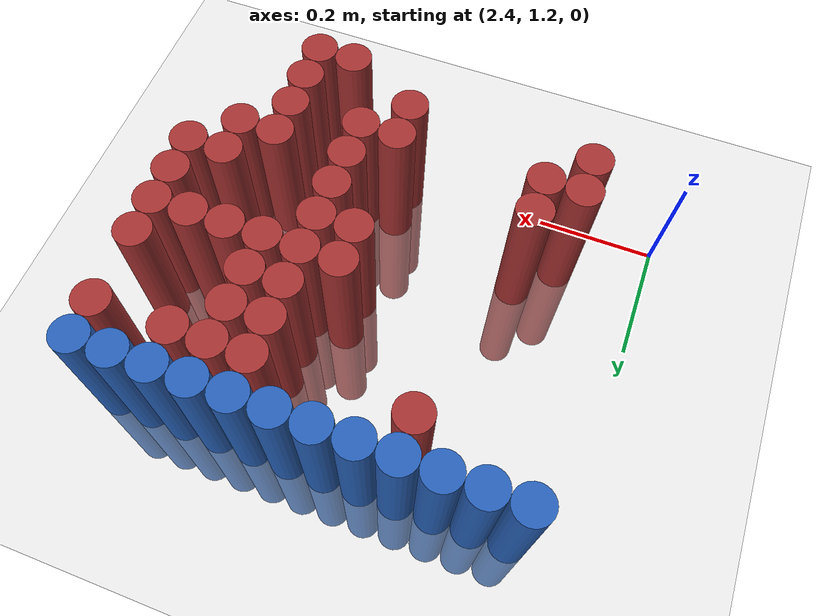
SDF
<sdf version="1.6">
 <world name="default">
  <model name="ground_plane">
   <static>1</static>
   <link name="link">
    <collision name="collision">
     <geometry><plane><normal>0 0 1</normal><size>100 100</size></plane></geometry>
     <surface><friction><ode><mu>100</mu><mu2>50</mu2></ode></friction></surface>
    </collision>
    <visual name="visual">
     <cast_shadows>0</cast_shadows>
     <geometry><plane><normal>0 0 1</normal><size>100 100</size></plane></geometry>
     <material>
      <script><uri>file://media/materials/scripts/gazebo.material</uri><name>Gazebo/Grey</name></script>
     </material>
    </visual>
   </link>
  </model>
  <model name="unit_cylinder_102">
   <static>1</static>
   <pose>2.490000 1.770000 0.000000 0.000000 0.000000 0.000000</pose>
   <link name="link">
    <inertial>
     <mass>1</mass>
     <inertia><ixx>0.145833</ixx><ixy>0</ixy><ixz>0</ixz><iyy>0.145833</iyy><iyz>0</iyz><izz>0.125</izz></inertia>
    </inertial>
    <collision name="collision">
     <geometry><cylinder><radius>0.030000</radius><length>0.5</length></cylinder></geometry>
    </collision>
    <visual name="visual">
     <geometry><cylinder><radius>0.030000</radius><length>0.5</length></cylinder></geometry>
     <material>
      <ambient>0.152000 0.379000 0.720000 1</ambient>
      <diffuse>0.152000 0.379000 0.720000 1</diffuse>
     </material>
     <material>
      <script><name>Gazebo/Grey</name><uri>file://media/materials/scripts/gazebo.material</uri></script>
     </material>
    </visual>
   </link>
  </model>
  <model name="unit_cylinder_103">
   <static>1</static>
   <pose>2.550000 1.770000 0.000000 0.000000 0.000000 0.000000</pose>
   <link name="link">
    <inertial>
     <mass>1</mass>
     <inertia><ixx>0.145833</ixx><ixy>0</ixy><ixz>0</ixz><iyy>0.145833</iyy><iyz>0</iyz><izz>0.125</izz></inertia>
    </inertial>
    <collision name="collision">
     <geometry><cylinder><radius>0.030000</radius><length>0.5</length></cylinder></geometry>
    </collision>
    <visual name="visual">
     <geometry><cylinder><radius>0.030000</radius><length>0.5</length></cylinder></geometry>
     <material>
      <ambient>0.152000 0.379000 0.720000 1</ambient>
      <diffuse>0.152000 0.379000 0.720000 1</diffuse>
     </material>
     <material>
      <script><name>Gazebo/Grey</name><uri>file://media/materials/scripts/gazebo.material</uri></script>
     </material>
    </visual>
   </link>
  </model>
  <model name="unit_cylinder_104">
   <static>1</static>
   <pose>2.610000 1.770000 0.000000 0.000000 0.000000 0.000000</pose>
   <link name="link">
    <inertial>
     <mass>1</mass>
     <inertia><ixx>0.145833</ixx><ixy>0</ixy><ixz>0</ixz><iyy>0.145833</iyy><iyz>0</iyz><izz>0.125</izz></inertia>
    </inertial>
    <collision name="collision">
     <geometry><cylinder><radius>0.030000</radius><length>0.5</length></cylinder></geometry>
    </collision>
    <visual name="visual">
     <geometry><cylinder><radius>0.030000</radius><length>0.5</length></cylinder></geometry>
     <material>
      <ambient>0.152000 0.379000 0.720000 1</ambient>
      <diffuse>0.152000 0.379000 0.720000 1</diffuse>
     </material>
     <material>
      <script><name>Gazebo/Grey</name><uri>file://media/materials/scripts/gazebo.material</uri></script>
     </material>
    </visual>
   </link>
  </model>
  <model name="unit_cylinder_105">
   <static>1</static>
   <pose>2.670000 1.770000 0.000000 0.000000 0.000000 0.000000</pose>
   <link name="link">
    <inertial>
     <mass>1</mass>
     <inertia><ixx>0.145833</ixx><ixy>0</ixy><ixz>0</ixz><iyy>0.145833</iyy><iyz>0</iyz><izz>0.125</izz></inertia>
    </inertial>
    <collision name="collision">
     <geometry><cylinder><radius>0.030000</radius><length>0.5</length></cylinder></geometry>
    </collision>
    <visual name="visual">
     <geometry><cylinder><radius>0.030000</radius><length>0.5</length></cylinder></geometry>
     <material>
      <ambient>0.152000 0.379000 0.720000 1</ambient>
      <diffuse>0.152000 0.379000 0.720000 1</diffuse>
     </material>
     <material>
      <script><name>Gazebo/Grey</name><uri>file://media/materials/scripts/gazebo.material</uri></script>
     </material>
    </visual>
   </link>
  </model>
  <model name="unit_cylinder_106">
   <static>1</static>
   <pose>2.730000 1.770000 0.000000 0.000000 0.000000 0.000000</pose>
   <link name="link">
    <inertial>
     <mass>1</mass>
     <inertia><ixx>0.145833</ixx><ixy>0</ixy><ixz>0</ixz><iyy>0.145833</iyy><iyz>0</iyz><izz>0.125</izz></inertia>
    </inertial>
    <collision name="collision">
     <geometry><cylinder><radius>0.030000</radius><length>0.5</length></cylinder></geometry>
    </collision>
    <visual name="visual">
     <geometry><cylinder><radius>0.030000</radius><length>0.5</length></cylinder></geometry>
     <material>
      <ambient>0.152000 0.379000 0.720000 1</ambient>
      <diffuse>0.152000 0.379000 0.720000 1</diffuse>
     </material>
     <material>
      <script><name>Gazebo/Grey</name><uri>file://media/materials/scripts/gazebo.material</uri></script>
     </material>
    </visual>
   </link>
  </model>
  <model name="unit_cylinder_107">
   <static>1</static>
   <pose>2.790000 1.770000 0.000000 0.000000 0.000000 0.000000</pose>
   <link name="link">
    <inertial>
     <mass>1</mass>
     <inertia><ixx>0.145833</ixx><ixy>0</ixy><ixz>0</ixz><iyy>0.145833</iyy><iyz>0</iyz><izz>0.125</izz></inertia>
    </inertial>
    <collision name="collision">
     <geometry><cylinder><radius>0.030000</radius><length>0.5</length></cylinder></geometry>
    </collision>
    <visual name="visual">
     <geometry><cylinder><radius>0.030000</radius><length>0.5</length></cylinder></geometry>
     <material>
      <ambient>0.152000 0.379000 0.720000 1</ambient>
      <diffuse>0.152000 0.379000 0.720000 1</diffuse>
     </material>
     <material>
      <script><name>Gazebo/Grey</name><uri>file://media/materials/scripts/gazebo.material</uri></script>
     </material>
    </visual>
   </link>
  </model>
  <model name="unit_cylinder_108">
   <static>1</static>
   <pose>2.850000 1.770000 0.000000 0.000000 0.000000 0.000000</pose>
   <link name="link">
    <inertial>
     <mass>1</mass>
     <inertia><ixx>0.145833</ixx><ixy>0</ixy><ixz>0</ixz><iyy>0.145833</iyy><iyz>0</iyz><izz>0.125</izz></inertia>
    </inertial>
    <collision name="collision">
     <geometry><cylinder><radius>0.030000</radius><length>0.5</length></cylinder></geometry>
    </collision>
    <visual name="visual">
     <geometry><cylinder><radius>0.030000</radius><length>0.5</length></cylinder></geometry>
     <material>
      <ambient>0.152000 0.379000 0.720000 1</ambient>
      <diffuse>0.152000 0.379000 0.720000 1</diffuse>
     </material>
     <material>
      <script><name>Gazebo/Grey</name><uri>file://media/materials/scripts/gazebo.material</uri></script>
     </material>
    </visual>
   </link>
  </model>
  <model name="unit_cylinder_109">
   <static>1</static>
   <pose>2.910000 1.770000 0.000000 0.000000 0.000000 0.000000</pose>
   <link name="link">
    <inertial>
     <mass>1</mass>
     <inertia><ixx>0.145833</ixx><ixy>0</ixy><ixz>0</ixz><iyy>0.145833</iyy><iyz>0</iyz><izz>0.125</izz></inertia>
    </inertial>
    <collision name="collision">
     <geometry><cylinder><radius>0.030000</radius><length>0.5</length></cylinder></geometry>
    </collision>
    <visual name="visual">
     <geometry><cylinder><radius>0.030000</radius><length>0.5</length></cylinder></geometry>
     <material>
      <ambient>0.152000 0.379000 0.720000 1</ambient>
      <diffuse>0.152000 0.379000 0.720000 1</diffuse>
     </material>
     <material>
      <script><name>Gazebo/Grey</name><uri>file://media/materials/scripts/gazebo.material</uri></script>
     </material>
    </visual>
   </link>
  </model>
  <model name="unit_cylinder_110">
   <static>1</static>
   <pose>2.970000 1.770000 0.000000 0.000000 0.000000 0.000000</pose>
   <link name="link">
    <inertial>
     <mass>1</mass>
     <inertia><ixx>0.145833</ixx><ixy>0</ixy><ixz>0</ixz><iyy>0.145833</iyy><iyz>0</iyz><izz>0.125</izz></inertia>
    </inertial>
    <collision name="collision">
     <geometry><cylinder><radius>0.030000</radius><length>0.5</length></cylinder></geometry>
    </collision>
    <visual name="visual">
     <geometry><cylinder><radius>0.030000</radius><length>0.5</length></cylinder></geometry>
     <material>
      <ambient>0.152000 0.379000 0.720000 1</ambient>
      <diffuse>0.152000 0.379000 0.720000 1</diffuse>
     </material>
     <material>
      <script><name>Gazebo/Grey</name><uri>file://media/materials/scripts/gazebo.material</uri></script>
     </material>
    </visual>
   </link>
  </model>
  <model name="unit_cylinder_111">
   <static>1</static>
   <pose>3.030000 1.770000 0.000000 0.000000 0.000000 0.000000</pose>
   <link name="link">
    <inertial>
     <mass>1</mass>
     <inertia><ixx>0.145833</ixx><ixy>0</ixy><ixz>0</ixz><iyy>0.145833</iyy><iyz>0</iyz><izz>0.125</izz></inertia>
    </inertial>
    <collision name="collision">
     <geometry><cylinder><radius>0.030000</radius><length>0.5</length></cylinder></geometry>
    </collision>
    <visual name="visual">
     <geometry><cylinder><radius>0.030000</radius><length>0.5</length></cylinder></geometry>
     <material>
      <ambient>0.152000 0.379000 0.720000 1</ambient>
      <diffuse>0.152000 0.379000 0.720000 1</diffuse>
     </material>
     <material>
      <script><name>Gazebo/Grey</name><uri>file://media/materials/scripts/gazebo.material</uri></script>
     </material>
    </visual>
   </link>
  </model>
  <model name="unit_cylinder_112">
   <static>1</static>
   <pose>3.090000 1.770000 0.000000 0.000000 0.000000 0.000000</pose>
   <link name="link">
    <inertial>
     <mass>1</mass>
     <inertia><ixx>0.145833</ixx><ixy>0</ixy><ixz>0</ixz><iyy>0.145833</iyy><iyz>0</iyz><izz>0.125</izz></inertia>
    </inertial>
    <collision name="collision">
     <geometry><cylinder><radius>0.030000</radius><length>0.5</length></cylinder></geometry>
    </collision>
    <visual name="visual">
     <geometry><cylinder><radius>0.030000</radius><length>0.5</length></cylinder></geometry>
     <material>
      <ambient>0.152000 0.379000 0.720000 1</ambient>
      <diffuse>0.152000 0.379000 0.720000 1</diffuse>
     </material>
     <material>
      <script><name>Gazebo/Grey</name><uri>file://media/materials/scripts/gazebo.material</uri></script>
     </material>
    </visual>
   </link>
  </model>
  <model name="unit_cylinder_113">
   <static>1</static>
   <pose>3.150000 1.770000 0.000000 0.000000 0.000000 0.000000</pose>
   <link name="link">
    <inertial>
     <mass>1</mass>
     <inertia><ixx>0.145833</ixx><ixy>0</ixy><ixz>0</ixz><iyy>0.145833</iyy><iyz>0</iyz><izz>0.125</izz></inertia>
    </inertial>
    <collision name="collision">
     <geometry><cylinder><radius>0.030000</radius><length>0.5</length></cylinder></geometry>
    </collision>
    <visual name="visual">
     <geometry><cylinder><radius>0.030000</radius><length>0.5</length></cylinder></geometry>
     <material>
      <ambient>0.152000 0.379000 0.720000 1</ambient>
      <diffuse>0.152000 0.379000 0.720000 1</diffuse>
     </material>
     <material>
      <script><name>Gazebo/Grey</name><uri>file://media/materials/scripts/gazebo.material</uri></script>
     </material>
    </visual>
   </link>
  </model>
  <model name="unit_cylinder_131">
   <static>1</static>
   <pose>2.670000 1.710000 0.000000 0.000000 0.000000 0.000000</pose>
   <link name="link">
    <inertial>
     <mass>1</mass>
     <inertia><ixx>0.145833</ixx><ixy>0</ixy><ixz>0</ixz><iyy>0.145833</iyy><iyz>0</iyz><izz>0.125</izz></inertia>
    </inertial>
    <collision name="collision">
     <geometry><cylinder><radius>0.030000</radius><length>0.5</length></cylinder></geometry>
    </collision>
    <visual name="visual">
     <geometry><cylinder><radius>0.030000</radius><length>0.5</length></cylinder></geometry>
     <material>
      <ambient>0.648000 0.192000 0.192000 1</ambient>
      <diffuse>0.648000 0.192000 0.192000 1</diffuse>
     </material>
     <material>
      <script><name>Gazebo/Grey</name><uri>file://media/materials/scripts/gazebo.material</uri></script>
     </material>
    </visual>
   </link>
  </model>
  <model name="unit_cylinder_132">
   <static>1</static>
   <pose>2.910000 1.710000 0.000000 0.000000 0.000000 0.000000</pose>
   <link name="link">
    <inertial>
     <mass>1</mass>
     <inertia><ixx>0.145833</ixx><ixy>0</ixy><ixz>0</ixz><iyy>0.145833</iyy><iyz>0</iyz><izz>0.125</izz></inertia>
    </inertial>
    <collision name="collision">
     <geometry><cylinder><radius>0.030000</radius><length>0.5</length></cylinder></geometry>
    </collision>
    <visual name="visual">
     <geometry><cylinder><radius>0.030000</radius><length>0.5</length></cylinder></geometry>
     <material>
      <ambient>0.648000 0.192000 0.192000 1</ambient>
      <diffuse>0.648000 0.192000 0.192000 1</diffuse>
     </material>
     <material>
      <script><name>Gazebo/Grey</name><uri>file://media/materials/scripts/gazebo.material</uri></script>
     </material>
    </visual>
   </link>
  </model>
  <model name="unit_cylinder_133">
   <static>1</static>
   <pose>2.970000 1.710000 0.000000 0.000000 0.000000 0.000000</pose>
   <link name="link">
    <inertial>
     <mass>1</mass>
     <inertia><ixx>0.145833</ixx><ixy>0</ixy><ixz>0</ixz><iyy>0.145833</iyy><iyz>0</iyz><izz>0.125</izz></inertia>
    </inertial>
    <collision name="collision">
     <geometry><cylinder><radius>0.030000</radius><length>0.5</length></cylinder></geometry>
    </collision>
    <visual name="visual">
     <geometry><cylinder><radius>0.030000</radius><length>0.5</length></cylinder></geometry>
     <material>
      <ambient>0.648000 0.192000 0.192000 1</ambient>
      <diffuse>0.648000 0.192000 0.192000 1</diffuse>
     </material>
     <material>
      <script><name>Gazebo/Grey</name><uri>file://media/materials/scripts/gazebo.material</uri></script>
     </material>
    </visual>
   </link>
  </model>
  <model name="unit_cylinder_134">
   <static>1</static>
   <pose>3.030000 1.710000 0.000000 0.000000 0.000000 0.000000</pose>
   <link name="link">
    <inertial>
     <mass>1</mass>
     <inertia><ixx>0.145833</ixx><ixy>0</ixy><ixz>0</ixz><iyy>0.145833</iyy><iyz>0</iyz><izz>0.125</izz></inertia>
    </inertial>
    <collision name="collision">
     <geometry><cylinder><radius>0.030000</radius><length>0.5</length></cylinder></geometry>
    </collision>
    <visual name="visual">
     <geometry><cylinder><radius>0.030000</radius><length>0.5</length></cylinder></geometry>
     <material>
      <ambient>0.648000 0.192000 0.192000 1</ambient>
      <diffuse>0.648000 0.192000 0.192000 1</diffuse>
     </material>
     <material>
      <script><name>Gazebo/Grey</name><uri>file://media/materials/scripts/gazebo.material</uri></script>
     </material>
    </visual>
   </link>
  </model>
  <model name="unit_cylinder_135">
   <static>1</static>
   <pose>3.150000 1.710000 0.000000 0.000000 0.000000 0.000000</pose>
   <link name="link">
    <inertial>
     <mass>1</mass>
     <inertia><ixx>0.145833</ixx><ixy>0</ixy><ixz>0</ixz><iyy>0.145833</iyy><iyz>0</iyz><izz>0.125</izz></inertia>
    </inertial>
    <collision name="collision">
     <geometry><cylinder><radius>0.030000</radius><length>0.5</length></cylinder></geometry>
    </collision>
    <visual name="visual">
     <geometry><cylinder><radius>0.030000</radius><length>0.5</length></cylinder></geometry>
     <material>
      <ambient>0.648000 0.192000 0.192000 1</ambient>
      <diffuse>0.648000 0.192000 0.192000 1</diffuse>
     </material>
     <material>
      <script><name>Gazebo/Grey</name><uri>file://media/materials/scripts/gazebo.material</uri></script>
     </material>
    </visual>
   </link>
  </model>
  <model name="unit_cylinder_145">
   <static>1</static>
   <pose>2.910000 1.650000 0.000000 0.000000 0.000000 0.000000</pose>
   <link name="link">
    <inertial>
     <mass>1</mass>
     <inertia><ixx>0.145833</ixx><ixy>0</ixy><ixz>0</ixz><iyy>0.145833</iyy><iyz>0</iyz><izz>0.125</izz></inertia>
    </inertial>
    <collision name="collision">
     <geometry><cylinder><radius>0.030000</radius><length>0.5</length></cylinder></geometry>
    </collision>
    <visual name="visual">
     <geometry><cylinder><radius>0.030000</radius><length>0.5</length></cylinder></geometry>
     <material>
      <ambient>0.648000 0.192000 0.192000 1</ambient>
      <diffuse>0.648000 0.192000 0.192000 1</diffuse>
     </material>
     <material>
      <script><name>Gazebo/Grey</name><uri>file://media/materials/scripts/gazebo.material</uri></script>
     </material>
    </visual>
   </link>
  </model>
  <model name="unit_cylinder_146">
   <static>1</static>
   <pose>2.970000 1.650000 0.000000 0.000000 0.000000 0.000000</pose>
   <link name="link">
    <inertial>
     <mass>1</mass>
     <inertia><ixx>0.145833</ixx><ixy>0</ixy><ixz>0</ixz><iyy>0.145833</iyy><iyz>0</iyz><izz>0.125</izz></inertia>
    </inertial>
    <collision name="collision">
     <geometry><cylinder><radius>0.030000</radius><length>0.5</length></cylinder></geometry>
    </collision>
    <visual name="visual">
     <geometry><cylinder><radius>0.030000</radius><length>0.5</length></cylinder></geometry>
     <material>
      <ambient>0.648000 0.192000 0.192000 1</ambient>
      <diffuse>0.648000 0.192000 0.192000 1</diffuse>
     </material>
     <material>
      <script><name>Gazebo/Grey</name><uri>file://media/materials/scripts/gazebo.material</uri></script>
     </material>
    </visual>
   </link>
  </model>
  <model name="unit_cylinder_152">
   <static>1</static>
   <pose>2.910000 1.590000 0.000000 0.000000 0.000000 0.000000</pose>
   <link name="link">
    <inertial>
     <mass>1</mass>
     <inertia><ixx>0.145833</ixx><ixy>0</ixy><ixz>0</ixz><iyy>0.145833</iyy><iyz>0</iyz><izz>0.125</izz></inertia>
    </inertial>
    <collision name="collision">
     <geometry><cylinder><radius>0.030000</radius><length>0.5</length></cylinder></geometry>
    </collision>
    <visual name="visual">
     <geometry><cylinder><radius>0.030000</radius><length>0.5</length></cylinder></geometry>
     <material>
      <ambient>0.648000 0.192000 0.192000 1</ambient>
      <diffuse>0.648000 0.192000 0.192000 1</diffuse>
     </material>
     <material>
      <script><name>Gazebo/Grey</name><uri>file://media/materials/scripts/gazebo.material</uri></script>
     </material>
    </visual>
   </link>
  </model>
  <model name="unit_cylinder_153">
   <static>1</static>
   <pose>2.970000 1.590000 0.000000 0.000000 0.000000 0.000000</pose>
   <link name="link">
    <inertial>
     <mass>1</mass>
     <inertia><ixx>0.145833</ixx><ixy>0</ixy><ixz>0</ixz><iyy>0.145833</iyy><iyz>0</iyz><izz>0.125</izz></inertia>
    </inertial>
    <collision name="collision">
     <geometry><cylinder><radius>0.030000</radius><length>0.5</length></cylinder></geometry>
    </collision>
    <visual name="visual">
     <geometry><cylinder><radius>0.030000</radius><length>0.5</length></cylinder></geometry>
     <material>
      <ambient>0.648000 0.192000 0.192000 1</ambient>
      <diffuse>0.648000 0.192000 0.192000 1</diffuse>
     </material>
     <material>
      <script><name>Gazebo/Grey</name><uri>file://media/materials/scripts/gazebo.material</uri></script>
     </material>
    </visual>
   </link>
  </model>
  <model name="unit_cylinder_154">
   <static>1</static>
   <pose>3.150000 1.590000 0.000000 0.000000 0.000000 0.000000</pose>
   <link name="link">
    <inertial>
     <mass>1</mass>
     <inertia><ixx>0.145833</ixx><ixy>0</ixy><ixz>0</ixz><iyy>0.145833</iyy><iyz>0</iyz><izz>0.125</izz></inertia>
    </inertial>
    <collision name="collision">
     <geometry><cylinder><radius>0.030000</radius><length>0.5</length></cylinder></geometry>
    </collision>
    <visual name="visual">
     <geometry><cylinder><radius>0.030000</radius><length>0.5</length></cylinder></geometry>
     <material>
      <ambient>0.648000 0.192000 0.192000 1</ambient>
      <diffuse>0.648000 0.192000 0.192000 1</diffuse>
     </material>
     <material>
      <script><name>Gazebo/Grey</name><uri>file://media/materials/scripts/gazebo.material</uri></script>
     </material>
    </visual>
   </link>
  </model>
  <model name="unit_cylinder_159">
   <static>1</static>
   <pose>2.850000 1.530000 0.000000 0.000000 0.000000 0.000000</pose>
   <link name="link">
    <inertial>
     <mass>1</mass>
     <inertia><ixx>0.145833</ixx><ixy>0</ixy><ixz>0</ixz><iyy>0.145833</iyy><iyz>0</iyz><izz>0.125</izz></inertia>
    </inertial>
    <collision name="collision">
     <geometry><cylinder><radius>0.030000</radius><length>0.5</length></cylinder></geometry>
    </collision>
    <visual name="visual">
     <geometry><cylinder><radius>0.030000</radius><length>0.5</length></cylinder></geometry>
     <material>
      <ambient>0.648000 0.192000 0.192000 1</ambient>
      <diffuse>0.648000 0.192000 0.192000 1</diffuse>
     </material>
     <material>
      <script><name>Gazebo/Grey</name><uri>file://media/materials/scripts/gazebo.material</uri></script>
     </material>
    </visual>
   </link>
  </model>
  <model name="unit_cylinder_160">
   <static>1</static>
   <pose>2.910000 1.530000 0.000000 0.000000 0.000000 0.000000</pose>
   <link name="link">
    <inertial>
     <mass>1</mass>
     <inertia><ixx>0.145833</ixx><ixy>0</ixy><ixz>0</ixz><iyy>0.145833</iyy><iyz>0</iyz><izz>0.125</izz></inertia>
    </inertial>
    <collision name="collision">
     <geometry><cylinder><radius>0.030000</radius><length>0.5</length></cylinder></geometry>
    </collision>
    <visual name="visual">
     <geometry><cylinder><radius>0.030000</radius><length>0.5</length></cylinder></geometry>
     <material>
      <ambient>0.648000 0.192000 0.192000 1</ambient>
      <diffuse>0.648000 0.192000 0.192000 1</diffuse>
     </material>
     <material>
      <script><name>Gazebo/Grey</name><uri>file://media/materials/scripts/gazebo.material</uri></script>
     </material>
    </visual>
   </link>
  </model>
  <model name="unit_cylinder_161">
   <static>1</static>
   <pose>2.970000 1.530000 0.000000 0.000000 0.000000 0.000000</pose>
   <link name="link">
    <inertial>
     <mass>1</mass>
     <inertia><ixx>0.145833</ixx><ixy>0</ixy><ixz>0</ixz><iyy>0.145833</iyy><iyz>0</iyz><izz>0.125</izz></inertia>
    </inertial>
    <collision name="collision">
     <geometry><cylinder><radius>0.030000</radius><length>0.5</length></cylinder></geometry>
    </collision>
    <visual name="visual">
     <geometry><cylinder><radius>0.030000</radius><length>0.5</length></cylinder></geometry>
     <material>
      <ambient>0.648000 0.192000 0.192000 1</ambient>
      <diffuse>0.648000 0.192000 0.192000 1</diffuse>
     </material>
     <material>
      <script><name>Gazebo/Grey</name><uri>file://media/materials/scripts/gazebo.material</uri></script>
     </material>
    </visual>
   </link>
  </model>
  <model name="unit_cylinder_162">
   <static>1</static>
   <pose>3.030000 1.530000 0.000000 0.000000 0.000000 0.000000</pose>
   <link name="link">
    <inertial>
     <mass>1</mass>
     <inertia><ixx>0.145833</ixx><ixy>0</ixy><ixz>0</ixz><iyy>0.145833</iyy><iyz>0</iyz><izz>0.125</izz></inertia>
    </inertial>
    <collision name="collision">
     <geometry><cylinder><radius>0.030000</radius><length>0.5</length></cylinder></geometry>
    </collision>
    <visual name="visual">
     <geometry><cylinder><radius>0.030000</radius><length>0.5</length></cylinder></geometry>
     <material>
      <ambient>0.648000 0.192000 0.192000 1</ambient>
      <diffuse>0.648000 0.192000 0.192000 1</diffuse>
     </material>
     <material>
      <script><name>Gazebo/Grey</name><uri>file://media/materials/scripts/gazebo.material</uri></script>
     </material>
    </visual>
   </link>
  </model>
  <model name="unit_cylinder_163">
   <static>1</static>
   <pose>3.090000 1.530000 0.000000 0.000000 0.000000 0.000000</pose>
   <link name="link">
    <inertial>
     <mass>1</mass>
     <inertia><ixx>0.145833</ixx><ixy>0</ixy><ixz>0</ixz><iyy>0.145833</iyy><iyz>0</iyz><izz>0.125</izz></inertia>
    </inertial>
    <collision name="collision">
     <geometry><cylinder><radius>0.030000</radius><length>0.5</length></cylinder></geometry>
    </collision>
    <visual name="visual">
     <geometry><cylinder><radius>0.030000</radius><length>0.5</length></cylinder></geometry>
     <material>
      <ambient>0.648000 0.192000 0.192000 1</ambient>
      <diffuse>0.648000 0.192000 0.192000 1</diffuse>
     </material>
     <material>
      <script><name>Gazebo/Grey</name><uri>file://media/materials/scripts/gazebo.material</uri></script>
     </material>
    </visual>
   </link>
  </model>
  <model name="unit_cylinder_164">
   <static>1</static>
   <pose>3.150000 1.530000 0.000000 0.000000 0.000000 0.000000</pose>
   <link name="link">
    <inertial>
     <mass>1</mass>
     <inertia><ixx>0.145833</ixx><ixy>0</ixy><ixz>0</ixz><iyy>0.145833</iyy><iyz>0</iyz><izz>0.125</izz></inertia>
    </inertial>
    <collision name="collision">
     <geometry><cylinder><radius>0.030000</radius><length>0.5</length></cylinder></geometry>
    </collision>
    <visual name="visual">
     <geometry><cylinder><radius>0.030000</radius><length>0.5</length></cylinder></geometry>
     <material>
      <ambient>0.648000 0.192000 0.192000 1</ambient>
      <diffuse>0.648000 0.192000 0.192000 1</diffuse>
     </material>
     <material>
      <script><name>Gazebo/Grey</name><uri>file://media/materials/scripts/gazebo.material</uri></script>
     </material>
    </visual>
   </link>
  </model>
  <model name="unit_cylinder_168">
   <static>1</static>
   <pose>2.850000 1.470000 0.000000 0.000000 0.000000 0.000000</pose>
   <link name="link">
    <inertial>
     <mass>1</mass>
     <inertia><ixx>0.145833</ixx><ixy>0</ixy><ixz>0</ixz><iyy>0.145833</iyy><iyz>0</iyz><izz>0.125</izz></inertia>
    </inertial>
    <collision name="collision">
     <geometry><cylinder><radius>0.030000</radius><length>0.5</length></cylinder></geometry>
    </collision>
    <visual name="visual">
     <geometry><cylinder><radius>0.030000</radius><length>0.5</length></cylinder></geometry>
     <material>
      <ambient>0.648000 0.192000 0.192000 1</ambient>
      <diffuse>0.648000 0.192000 0.192000 1</diffuse>
     </material>
     <material>
      <script><name>Gazebo/Grey</name><uri>file://media/materials/scripts/gazebo.material</uri></script>
     </material>
    </visual>
   </link>
  </model>
  <model name="unit_cylinder_169">
   <static>1</static>
   <pose>2.910000 1.470000 0.000000 0.000000 0.000000 0.000000</pose>
   <link name="link">
    <inertial>
     <mass>1</mass>
     <inertia><ixx>0.145833</ixx><ixy>0</ixy><ixz>0</ixz><iyy>0.145833</iyy><iyz>0</iyz><izz>0.125</izz></inertia>
    </inertial>
    <collision name="collision">
     <geometry><cylinder><radius>0.030000</radius><length>0.5</length></cylinder></geometry>
    </collision>
    <visual name="visual">
     <geometry><cylinder><radius>0.030000</radius><length>0.5</length></cylinder></geometry>
     <material>
      <ambient>0.648000 0.192000 0.192000 1</ambient>
      <diffuse>0.648000 0.192000 0.192000 1</diffuse>
     </material>
     <material>
      <script><name>Gazebo/Grey</name><uri>file://media/materials/scripts/gazebo.material</uri></script>
     </material>
    </visual>
   </link>
  </model>
  <model name="unit_cylinder_170">
   <static>1</static>
   <pose>3.150000 1.470000 0.000000 0.000000 0.000000 0.000000</pose>
   <link name="link">
    <inertial>
     <mass>1</mass>
     <inertia><ixx>0.145833</ixx><ixy>0</ixy><ixz>0</ixz><iyy>0.145833</iyy><iyz>0</iyz><izz>0.125</izz></inertia>
    </inertial>
    <collision name="collision">
     <geometry><cylinder><radius>0.030000</radius><length>0.5</length></cylinder></geometry>
    </collision>
    <visual name="visual">
     <geometry><cylinder><radius>0.030000</radius><length>0.5</length></cylinder></geometry>
     <material>
      <ambient>0.648000 0.192000 0.192000 1</ambient>
      <diffuse>0.648000 0.192000 0.192000 1</diffuse>
     </material>
     <material>
      <script><name>Gazebo/Grey</name><uri>file://media/materials/scripts/gazebo.material</uri></script>
     </material>
    </visual>
   </link>
  </model>
  <model name="unit_cylinder_179">
   <static>1</static>
   <pose>2.910000 1.410000 0.000000 0.000000 0.000000 0.000000</pose>
   <link name="link">
    <inertial>
     <mass>1</mass>
     <inertia><ixx>0.145833</ixx><ixy>0</ixy><ixz>0</ixz><iyy>0.145833</iyy><iyz>0</iyz><izz>0.125</izz></inertia>
    </inertial>
    <collision name="collision">
     <geometry><cylinder><radius>0.030000</radius><length>0.5</length></cylinder></geometry>
    </collision>
    <visual name="visual">
     <geometry><cylinder><radius>0.030000</radius><length>0.5</length></cylinder></geometry>
     <material>
      <ambient>0.648000 0.192000 0.192000 1</ambient>
      <diffuse>0.648000 0.192000 0.192000 1</diffuse>
     </material>
     <material>
      <script><name>Gazebo/Grey</name><uri>file://media/materials/scripts/gazebo.material</uri></script>
     </material>
    </visual>
   </link>
  </model>
  <model name="unit_cylinder_180">
   <static>1</static>
   <pose>3.090000 1.410000 0.000000 0.000000 0.000000 0.000000</pose>
   <link name="link">
    <inertial>
     <mass>1</mass>
     <inertia><ixx>0.145833</ixx><ixy>0</ixy><ixz>0</ixz><iyy>0.145833</iyy><iyz>0</iyz><izz>0.125</izz></inertia>
    </inertial>
    <collision name="collision">
     <geometry><cylinder><radius>0.030000</radius><length>0.5</length></cylinder></geometry>
    </collision>
    <visual name="visual">
     <geometry><cylinder><radius>0.030000</radius><length>0.5</length></cylinder></geometry>
     <material>
      <ambient>0.648000 0.192000 0.192000 1</ambient>
      <diffuse>0.648000 0.192000 0.192000 1</diffuse>
     </material>
     <material>
      <script><name>Gazebo/Grey</name><uri>file://media/materials/scripts/gazebo.material</uri></script>
     </material>
    </visual>
   </link>
  </model>
  <model name="unit_cylinder_181">
   <static>1</static>
   <pose>3.150000 1.410000 0.000000 0.000000 0.000000 0.000000</pose>
   <link name="link">
    <inertial>
     <mass>1</mass>
     <inertia><ixx>0.145833</ixx><ixy>0</ixy><ixz>0</ixz><iyy>0.145833</iyy><iyz>0</iyz><izz>0.125</izz></inertia>
    </inertial>
    <collision name="collision">
     <geometry><cylinder><radius>0.030000</radius><length>0.5</length></cylinder></geometry>
    </collision>
    <visual name="visual">
     <geometry><cylinder><radius>0.030000</radius><length>0.5</length></cylinder></geometry>
     <material>
      <ambient>0.648000 0.192000 0.192000 1</ambient>
      <diffuse>0.648000 0.192000 0.192000 1</diffuse>
     </material>
     <material>
      <script><name>Gazebo/Grey</name><uri>file://media/materials/scripts/gazebo.material</uri></script>
     </material>
    </visual>
   </link>
  </model>
  <model name="unit_cylinder_187">
   <static>1</static>
   <pose>2.610000 1.350000 0.000000 0.000000 0.000000 0.000000</pose>
   <link name="link">
    <inertial>
     <mass>1</mass>
     <inertia><ixx>0.145833</ixx><ixy>0</ixy><ixz>0</ixz><iyy>0.145833</iyy><iyz>0</iyz><izz>0.125</izz></inertia>
    </inertial>
    <collision name="collision">
     <geometry><cylinder><radius>0.030000</radius><length>0.5</length></cylinder></geometry>
    </collision>
    <visual name="visual">
     <geometry><cylinder><radius>0.030000</radius><length>0.5</length></cylinder></geometry>
     <material>
      <ambient>0.648000 0.192000 0.192000 1</ambient>
      <diffuse>0.648000 0.192000 0.192000 1</diffuse>
     </material>
     <material>
      <script><name>Gazebo/Grey</name><uri>file://media/materials/scripts/gazebo.material</uri></script>
     </material>
    </visual>
   </link>
  </model>
  <model name="unit_cylinder_188">
   <static>1</static>
   <pose>2.910000 1.350000 0.000000 0.000000 0.000000 0.000000</pose>
   <link name="link">
    <inertial>
     <mass>1</mass>
     <inertia><ixx>0.145833</ixx><ixy>0</ixy><ixz>0</ixz><iyy>0.145833</iyy><iyz>0</iyz><izz>0.125</izz></inertia>
    </inertial>
    <collision name="collision">
     <geometry><cylinder><radius>0.030000</radius><length>0.5</length></cylinder></geometry>
    </collision>
    <visual name="visual">
     <geometry><cylinder><radius>0.030000</radius><length>0.5</length></cylinder></geometry>
     <material>
      <ambient>0.648000 0.192000 0.192000 1</ambient>
      <diffuse>0.648000 0.192000 0.192000 1</diffuse>
     </material>
     <material>
      <script><name>Gazebo/Grey</name><uri>file://media/materials/scripts/gazebo.material</uri></script>
     </material>
    </visual>
   </link>
  </model>
  <model name="unit_cylinder_189">
   <static>1</static>
   <pose>3.030000 1.350000 0.000000 0.000000 0.000000 0.000000</pose>
   <link name="link">
    <inertial>
     <mass>1</mass>
     <inertia><ixx>0.145833</ixx><ixy>0</ixy><ixz>0</ixz><iyy>0.145833</iyy><iyz>0</iyz><izz>0.125</izz></inertia>
    </inertial>
    <collision name="collision">
     <geometry><cylinder><radius>0.030000</radius><length>0.5</length></cylinder></geometry>
    </collision>
    <visual name="visual">
     <geometry><cylinder><radius>0.030000</radius><length>0.5</length></cylinder></geometry>
     <material>
      <ambient>0.648000 0.192000 0.192000 1</ambient>
      <diffuse>0.648000 0.192000 0.192000 1</diffuse>
     </material>
     <material>
      <script><name>Gazebo/Grey</name><uri>file://media/materials/scripts/gazebo.material</uri></script>
     </material>
    </visual>
   </link>
  </model>
  <model name="unit_cylinder_190">
   <static>1</static>
   <pose>3.090000 1.350000 0.000000 0.000000 0.000000 0.000000</pose>
   <link name="link">
    <inertial>
     <mass>1</mass>
     <inertia><ixx>0.145833</ixx><ixy>0</ixy><ixz>0</ixz><iyy>0.145833</iyy><iyz>0</iyz><izz>0.125</izz></inertia>
    </inertial>
    <collision name="collision">
     <geometry><cylinder><radius>0.030000</radius><length>0.5</length></cylinder></geometry>
    </collision>
    <visual name="visual">
     <geometry><cylinder><radius>0.030000</radius><length>0.5</length></cylinder></geometry>
     <material>
      <ambient>0.648000 0.192000 0.192000 1</ambient>
      <diffuse>0.648000 0.192000 0.192000 1</diffuse>
     </material>
     <material>
      <script><name>Gazebo/Grey</name><uri>file://media/materials/scripts/gazebo.material</uri></script>
     </material>
    </visual>
   </link>
  </model>
  <model name="unit_cylinder_194">
   <static>1</static>
   <pose>2.550000 1.290000 0.000000 0.000000 0.000000 0.000000</pose>
   <link name="link">
    <inertial>
     <mass>1</mass>
     <inertia><ixx>0.145833</ixx><ixy>0</ixy><ixz>0</ixz><iyy>0.145833</iyy><iyz>0</iyz><izz>0.125</izz></inertia>
    </inertial>
    <collision name="collision">
     <geometry><cylinder><radius>0.030000</radius><length>0.5</length></cylinder></geometry>
    </collision>
    <visual name="visual">
     <geometry><cylinder><radius>0.030000</radius><length>0.5</length></cylinder></geometry>
     <material>
      <ambient>0.648000 0.192000 0.192000 1</ambient>
      <diffuse>0.648000 0.192000 0.192000 1</diffuse>
     </material>
     <material>
      <script><name>Gazebo/Grey</name><uri>file://media/materials/scripts/gazebo.material</uri></script>
     </material>
    </visual>
   </link>
  </model>
  <model name="unit_cylinder_195">
   <static>1</static>
   <pose>2.610000 1.290000 0.000000 0.000000 0.000000 0.000000</pose>
   <link name="link">
    <inertial>
     <mass>1</mass>
     <inertia><ixx>0.145833</ixx><ixy>0</ixy><ixz>0</ixz><iyy>0.145833</iyy><iyz>0</iyz><izz>0.125</izz></inertia>
    </inertial>
    <collision name="collision">
     <geometry><cylinder><radius>0.030000</radius><length>0.5</length></cylinder></geometry>
    </collision>
    <visual name="visual">
     <geometry><cylinder><radius>0.030000</radius><length>0.5</length></cylinder></geometry>
     <material>
      <ambient>0.648000 0.192000 0.192000 1</ambient>
      <diffuse>0.648000 0.192000 0.192000 1</diffuse>
     </material>
     <material>
      <script><name>Gazebo/Grey</name><uri>file://media/materials/scripts/gazebo.material</uri></script>
     </material>
    </visual>
   </link>
  </model>
  <model name="unit_cylinder_196">
   <static>1</static>
   <pose>2.850000 1.290000 0.000000 0.000000 0.000000 0.000000</pose>
   <link name="link">
    <inertial>
     <mass>1</mass>
     <inertia><ixx>0.145833</ixx><ixy>0</ixy><ixz>0</ixz><iyy>0.145833</iyy><iyz>0</iyz><izz>0.125</izz></inertia>
    </inertial>
    <collision name="collision">
     <geometry><cylinder><radius>0.030000</radius><length>0.5</length></cylinder></geometry>
    </collision>
    <visual name="visual">
     <geometry><cylinder><radius>0.030000</radius><length>0.5</length></cylinder></geometry>
     <material>
      <ambient>0.648000 0.192000 0.192000 1</ambient>
      <diffuse>0.648000 0.192000 0.192000 1</diffuse>
     </material>
     <material>
      <script><name>Gazebo/Grey</name><uri>file://media/materials/scripts/gazebo.material</uri></script>
     </material>
    </visual>
   </link>
  </model>
  <model name="unit_cylinder_197">
   <static>1</static>
   <pose>2.910000 1.290000 0.000000 0.000000 0.000000 0.000000</pose>
   <link name="link">
    <inertial>
     <mass>1</mass>
     <inertia><ixx>0.145833</ixx><ixy>0</ixy><ixz>0</ixz><iyy>0.145833</iyy><iyz>0</iyz><izz>0.125</izz></inertia>
    </inertial>
    <collision name="collision">
     <geometry><cylinder><radius>0.030000</radius><length>0.5</length></cylinder></geometry>
    </collision>
    <visual name="visual">
     <geometry><cylinder><radius>0.030000</radius><length>0.5</length></cylinder></geometry>
     <material>
      <ambient>0.648000 0.192000 0.192000 1</ambient>
      <diffuse>0.648000 0.192000 0.192000 1</diffuse>
     </material>
     <material>
      <script><name>Gazebo/Grey</name><uri>file://media/materials/scripts/gazebo.material</uri></script>
     </material>
    </visual>
   </link>
  </model>
  <model name="unit_cylinder_198">
   <static>1</static>
   <pose>3.030000 1.290000 0.000000 0.000000 0.000000 0.000000</pose>
   <link name="link">
    <inertial>
     <mass>1</mass>
     <inertia><ixx>0.145833</ixx><ixy>0</ixy><ixz>0</ixz><iyy>0.145833</iyy><iyz>0</iyz><izz>0.125</izz></inertia>
    </inertial>
    <collision name="collision">
     <geometry><cylinder><radius>0.030000</radius><length>0.5</length></cylinder></geometry>
    </collision>
    <visual name="visual">
     <geometry><cylinder><radius>0.030000</radius><length>0.5</length></cylinder></geometry>
     <material>
      <ambient>0.648000 0.192000 0.192000 1</ambient>
      <diffuse>0.648000 0.192000 0.192000 1</diffuse>
     </material>
     <material>
      <script><name>Gazebo/Grey</name><uri>file://media/materials/scripts/gazebo.material</uri></script>
     </material>
    </visual>
   </link>
  </model>
  <model name="unit_cylinder_201">
   <static>1</static>
   <pose>2.550000 1.230000 0.000000 0.000000 0.000000 0.000000</pose>
   <link name="link">
    <inertial>
     <mass>1</mass>
     <inertia><ixx>0.145833</ixx><ixy>0</ixy><ixz>0</ixz><iyy>0.145833</iyy><iyz>0</iyz><izz>0.125</izz></inertia>
    </inertial>
    <collision name="collision">
     <geometry><cylinder><radius>0.030000</radius><length>0.5</length></cylinder></geometry>
    </collision>
    <visual name="visual">
     <geometry><cylinder><radius>0.030000</radius><length>0.5</length></cylinder></geometry>
     <material>
      <ambient>0.648000 0.192000 0.192000 1</ambient>
      <diffuse>0.648000 0.192000 0.192000 1</diffuse>
     </material>
     <material>
      <script><name>Gazebo/Grey</name><uri>file://media/materials/scripts/gazebo.material</uri></script>
     </material>
    </visual>
   </link>
  </model>
  <model name="unit_cylinder_202">
   <static>1</static>
   <pose>2.850000 1.230000 0.000000 0.000000 0.000000 0.000000</pose>
   <link name="link">
    <inertial>
     <mass>1</mass>
     <inertia><ixx>0.145833</ixx><ixy>0</ixy><ixz>0</ixz><iyy>0.145833</iyy><iyz>0</iyz><izz>0.125</izz></inertia>
    </inertial>
    <collision name="collision">
     <geometry><cylinder><radius>0.030000</radius><length>0.5</length></cylinder></geometry>
    </collision>
    <visual name="visual">
     <geometry><cylinder><radius>0.030000</radius><length>0.5</length></cylinder></geometry>
     <material>
      <ambient>0.648000 0.192000 0.192000 1</ambient>
      <diffuse>0.648000 0.192000 0.192000 1</diffuse>
     </material>
     <material>
      <script><name>Gazebo/Grey</name><uri>file://media/materials/scripts/gazebo.material</uri></script>
     </material>
    </visual>
   </link>
  </model>
  <model name="unit_cylinder_203">
   <static>1</static>
   <pose>3.030000 1.230000 0.000000 0.000000 0.000000 0.000000</pose>
   <link name="link">
    <inertial>
     <mass>1</mass>
     <inertia><ixx>0.145833</ixx><ixy>0</ixy><ixz>0</ixz><iyy>0.145833</iyy><iyz>0</iyz><izz>0.125</izz></inertia>
    </inertial>
    <collision name="collision">
     <geometry><cylinder><radius>0.030000</radius><length>0.5</length></cylinder></geometry>
    </collision>
    <visual name="visual">
     <geometry><cylinder><radius>0.030000</radius><length>0.5</length></cylinder></geometry>
     <material>
      <ambient>0.648000 0.192000 0.192000 1</ambient>
      <diffuse>0.648000 0.192000 0.192000 1</diffuse>
     </material>
     <material>
      <script><name>Gazebo/Grey</name><uri>file://media/materials/scripts/gazebo.material</uri></script>
     </material>
    </visual>
   </link>
  </model>
  <model name="unit_cylinder_213">
   <static>1</static>
   <pose>2.970000 1.170000 0.000000 0.000000 0.000000 0.000000</pose>
   <link name="link">
    <inertial>
     <mass>1</mass>
     <inertia><ixx>0.145833</ixx><ixy>0</ixy><ixz>0</ixz><iyy>0.145833</iyy><iyz>0</iyz><izz>0.125</izz></inertia>
    </inertial>
    <collision name="collision">
     <geometry><cylinder><radius>0.030000</radius><length>0.5</length></cylinder></geometry>
    </collision>
    <visual name="visual">
     <geometry><cylinder><radius>0.030000</radius><length>0.5</length></cylinder></geometry>
     <material>
      <ambient>0.648000 0.192000 0.192000 1</ambient>
      <diffuse>0.648000 0.192000 0.192000 1</diffuse>
     </material>
     <material>
      <script><name>Gazebo/Grey</name><uri>file://media/materials/scripts/gazebo.material</uri></script>
     </material>
    </visual>
   </link>
  </model>
  <model name="unit_cylinder_214">
   <static>1</static>
   <pose>3.030000 1.170000 0.000000 0.000000 0.000000 0.000000</pose>
   <link name="link">
    <inertial>
     <mass>1</mass>
     <inertia><ixx>0.145833</ixx><ixy>0</ixy><ixz>0</ixz><iyy>0.145833</iyy><iyz>0</iyz><izz>0.125</izz></inertia>
    </inertial>
    <collision name="collision">
     <geometry><cylinder><radius>0.030000</radius><length>0.5</length></cylinder></geometry>
    </collision>
    <visual name="visual">
     <geometry><cylinder><radius>0.030000</radius><length>0.5</length></cylinder></geometry>
     <material>
      <ambient>0.648000 0.192000 0.192000 1</ambient>
      <diffuse>0.648000 0.192000 0.192000 1</diffuse>
     </material>
     <material>
      <script><name>Gazebo/Grey</name><uri>file://media/materials/scripts/gazebo.material</uri></script>
     </material>
    </visual>
   </link>
  </model>
 </world>
</sdf>
